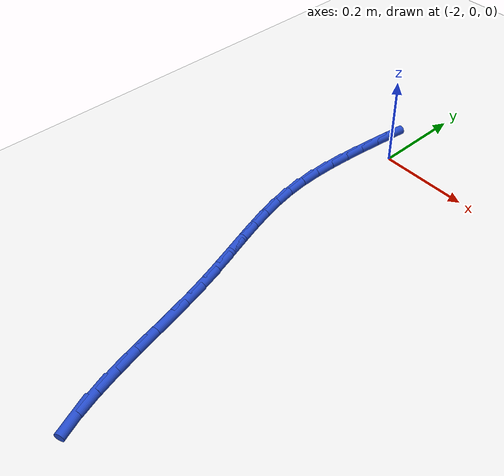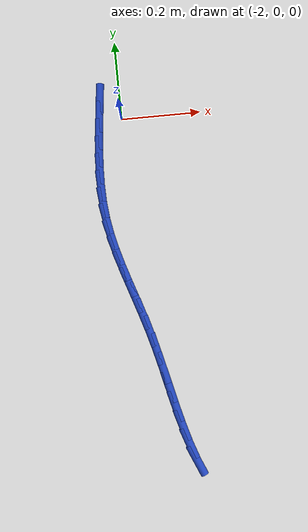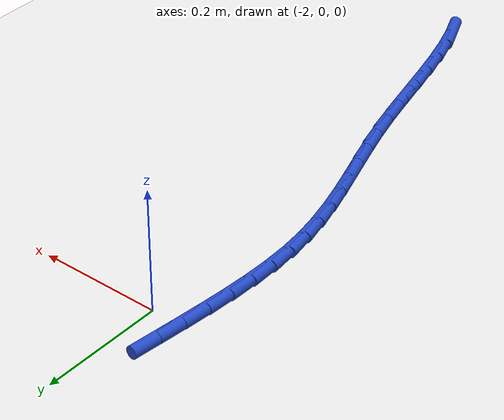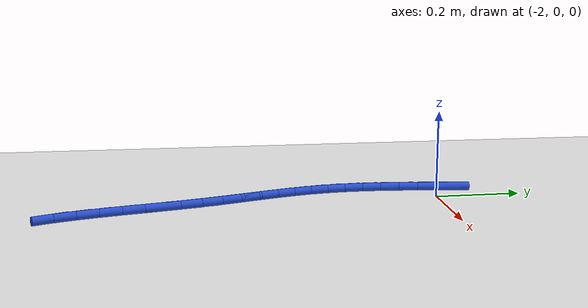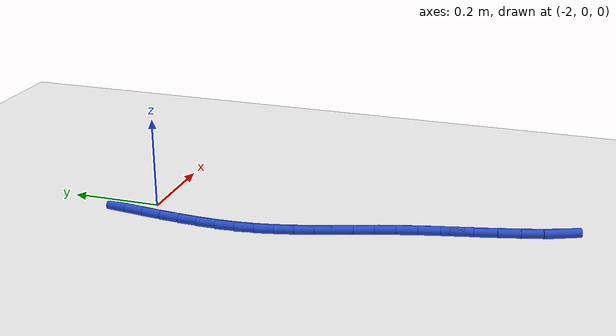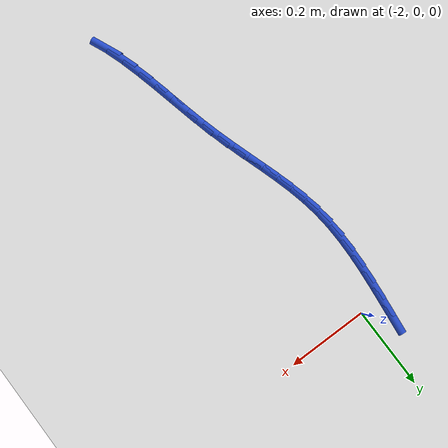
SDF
<sdf version="1.6">
 <world name="default">
  <model name="ground_plane">
   <static>1</static>
   <link name="link">
    <collision name="collision">
     <geometry><plane><normal>0 0 1</normal><size>100 100</size></plane></geometry>
     <surface><friction><ode><mu>100</mu><mu2>50</mu2></ode></friction></surface>
    </collision>
    <visual name="visual">
     <cast_shadows>0</cast_shadows>
     <geometry><plane><normal>0 0 1</normal><size>100 100</size></plane></geometry>
     <material>
      <script><uri>file://media/materials/scripts/gazebo.material</uri><name>Gazebo/WhiteGlow</name></script>
     </material>
    </visual>
   </link>
  </model>
  <model name="line">
   <link name="link_88">
    <pose>-2.0510034778801427 0.05363172904365229 0.01 0 1.57 1.4549504219575737</pose>
    <collision name="collision">
     <geometry><cylinder><radius>0.01</radius><length>0.08</length></cylinder></geometry>
    </collision>
    <visual name="visual">
     <material>
      <script><name>Gazebo/Blue</name><uri>file://media/materials/scripts/gazebo.material</uri></script>
     </material>
     <geometry><cylinder><radius>0.01</radius><length>0.08</length></cylinder></geometry>
    </visual>
   </link>
   <link name="link_89">
    <pose>-2.0561972716901766 0.00899882675182484 0.01 0 1.57 1.4623214314707187</pose>
    <collision name="collision">
     <geometry><cylinder><radius>0.01</radius><length>0.08</length></cylinder></geometry>
    </collision>
    <visual name="visual">
     <material>
      <script><name>Gazebo/Blue</name><uri>file://media/materials/scripts/gazebo.material</uri></script>
     </material>
     <geometry><cylinder><radius>0.01</radius><length>0.08</length></cylinder></geometry>
    </visual>
   </link>
   <link name="link_90">
    <pose>-2.061041387255293 -0.035482439735718824 0.01 0 1.57 1.4801453365531057</pose>
    <collision name="collision">
     <geometry><cylinder><radius>0.01</radius><length>0.08</length></cylinder></geometry>
    </collision>
    <visual name="visual">
     <material>
      <script><name>Gazebo/Blue</name><uri>file://media/materials/scripts/gazebo.material</uri></script>
     </material>
     <geometry><cylinder><radius>0.01</radius><length>0.08</length></cylinder></geometry>
    </visual>
   </link>
   <link name="link_91">
    <pose>-2.0650588211838605 -0.0796785740160246 0.01 0 1.57 1.5088859734309945</pose>
    <collision name="collision">
     <geometry><cylinder><radius>0.01</radius><length>0.08</length></cylinder></geometry>
    </collision>
    <visual name="visual">
     <material>
      <script><name>Gazebo/Blue</name><uri>file://media/materials/scripts/gazebo.material</uri></script>
     </material>
     <geometry><cylinder><radius>0.01</radius><length>0.08</length></cylinder></geometry>
    </visual>
   </link>
   <link name="link_92">
    <pose>-2.0677725700842475 -0.12345607968613757 0.01 0 1.57 1.5492137383669815</pose>
    <collision name="collision">
     <geometry><cylinder><radius>0.01</radius><length>0.08</length></cylinder></geometry>
    </collision>
    <visual name="visual">
     <material>
      <script><name>Gazebo/Blue</name><uri>file://media/materials/scripts/gazebo.material</uri></script>
     </material>
     <geometry><cylinder><radius>0.01</radius><length>0.08</length></cylinder></geometry>
    </visual>
   </link>
   <link name="link_93">
    <pose>-2.068705630564823 -0.16668146034310294 0.01 0 1.57 -1.5396677196924176</pose>
    <collision name="collision">
     <geometry><cylinder><radius>0.01</radius><length>0.08</length></cylinder></geometry>
    </collision>
    <visual name="visual">
     <material>
      <script><name>Gazebo/Blue</name><uri>file://media/materials/scripts/gazebo.material</uri></script>
     </material>
     <geometry><cylinder><radius>0.01</radius><length>0.08</length></cylinder></geometry>
    </visual>
   </link>
   <link name="link_94">
    <pose>-2.0673809992339547 -0.20922121958396653 0.01 0 1.57 -1.4738276678237308</pose>
    <collision name="collision">
     <geometry><cylinder><radius>0.01</radius><length>0.08</length></cylinder></geometry>
    </collision>
    <visual name="visual">
     <material>
      <script><name>Gazebo/Blue</name><uri>file://media/materials/scripts/gazebo.material</uri></script>
     </material>
     <geometry><cylinder><radius>0.01</radius><length>0.08</length></cylinder></geometry>
    </visual>
   </link>
   <link name="link_95">
    <pose>-2.063322630170593 -0.25094233804665733 0.01 0 1.57 -1.4015875113860752</pose>
    <collision name="collision">
     <geometry><cylinder><radius>0.01</radius><length>0.08</length></cylinder></geometry>
    </collision>
    <visual name="visual">
     <material>
      <script><name>Gazebo/Blue</name><uri>file://media/materials/scripts/gazebo.material</uri></script>
     </material>
     <geometry><cylinder><radius>0.01</radius><length>0.08</length></cylinder></geometry>
    </visual>
   </link>
   <link name="link_96">
    <pose>-2.0563337087817954 -0.2918509178863952 0.01 0 1.57 -1.3411808812741974</pose>
    <collision name="collision">
     <geometry><cylinder><radius>0.01</radius><length>0.08</length></cylinder></geometry>
    </collision>
    <visual name="visual">
     <material>
      <script><name>Gazebo/Blue</name><uri>file://media/materials/scripts/gazebo.material</uri></script>
     </material>
     <geometry><cylinder><radius>0.01</radius><length>0.08</length></cylinder></geometry>
    </visual>
   </link>
   <link name="link_97">
    <pose>-2.046882832790003 -0.33228458985716236 0.01 0 1.57 -1.2966223759244657</pose>
    <collision name="collision">
     <geometry><cylinder><radius>0.01</radius><length>0.08</length></cylinder></geometry>
    </collision>
    <visual name="visual">
     <material>
      <script><name>Gazebo/Blue</name><uri>file://media/materials/scripts/gazebo.material</uri></script>
     </material>
     <geometry><cylinder><radius>0.01</radius><length>0.08</length></cylinder></geometry>
    </visual>
   </link>
   <link name="link_98">
    <pose>-2.035535596846867 -0.37262931152517936 0.01 0 1.57 -1.268416777366459</pose>
    <collision name="collision">
     <geometry><cylinder><radius>0.01</radius><length>0.08</length></cylinder></geometry>
    </collision>
    <visual name="visual">
     <material>
      <script><name>Gazebo/Blue</name><uri>file://media/materials/scripts/gazebo.material</uri></script>
     </material>
     <geometry><cylinder><radius>0.01</radius><length>0.08</length></cylinder></geometry>
    </visual>
   </link>
   <link name="link_99">
    <pose>-2.0228575956040418 -0.4132710404566677 0.01 0 1.57 -1.2562876628318396</pose>
    <collision name="collision">
     <geometry><cylinder><radius>0.01</radius><length>0.08</length></cylinder></geometry>
    </collision>
    <visual name="visual">
     <material>
      <script><name>Gazebo/Blue</name><uri>file://media/materials/scripts/gazebo.material</uri></script>
     </material>
     <geometry><cylinder><radius>0.01</radius><length>0.08</length></cylinder></geometry>
    </visual>
   </link>
   <link name="link_100">
    <pose>-2.0094144237131815 -0.45459573421784666 0.01 0 1.57 -1.259451128083548</pose>
    <collision name="collision">
     <geometry><cylinder><radius>0.01</radius><length>0.08</length></cylinder></geometry>
    </collision>
    <visual name="visual">
     <material>
      <script><name>Gazebo/Blue</name><uri>file://media/materials/scripts/gazebo.material</uri></script>
     </material>
     <geometry><cylinder><radius>0.01</radius><length>0.08</length></cylinder></geometry>
    </visual>
   </link>
   <link name="link_101">
    <pose>-1.9957716758259394 -0.4969893503749375 0.01 0 1.57 -1.276785146767057</pose>
    <collision name="collision">
     <geometry><cylinder><radius>0.01</radius><length>0.08</length></cylinder></geometry>
    </collision>
    <visual name="visual">
     <material>
      <script><name>Gazebo/Blue</name><uri>file://media/materials/scripts/gazebo.material</uri></script>
     </material>
     <geometry><cylinder><radius>0.01</radius><length>0.08</length></cylinder></geometry>
    </visual>
   </link>
   <link name="link_102">
    <pose>-1.9824949465939692 -0.5408378464941612 0.01 0 1.57 -1.3063782293023634</pose>
    <collision name="collision">
     <geometry><cylinder><radius>0.01</radius><length>0.08</length></cylinder></geometry>
    </collision>
    <visual name="visual">
     <material>
      <script><name>Gazebo/Blue</name><uri>file://media/materials/scripts/gazebo.material</uri></script>
     </material>
     <geometry><cylinder><radius>0.01</radius><length>0.08</length></cylinder></geometry>
    </visual>
   </link>
   <link name="link_103">
    <pose>-1.9701299819947984 -0.5865058209523091 0.01 0 1.57 -1.3338168795494558</pose>
    <collision name="collision">
     <geometry><cylinder><radius>0.01</radius><length>0.08</length></cylinder></geometry>
    </collision>
    <visual name="visual">
     <material>
      <script><name>Gazebo/Blue</name><uri>file://media/materials/scripts/gazebo.material</uri></script>
     </material>
     <geometry><cylinder><radius>0.01</radius><length>0.08</length></cylinder></geometry>
    </visual>
   </link>
   <link name="link_104">
    <pose>-1.9587068834350068 -0.633802986192792 0.01 0 1.57 -1.3461297990340557</pose>
    <collision name="collision">
     <geometry><cylinder><radius>0.01</radius><length>0.08</length></cylinder></geometry>
    </collision>
    <visual name="visual">
     <material>
      <script><name>Gazebo/Blue</name><uri>file://media/materials/scripts/gazebo.material</uri></script>
     </material>
     <geometry><cylinder><radius>0.01</radius><length>0.08</length></cylinder></geometry>
    </visual>
   </link>
   <link name="link_105">
    <pose>-1.9477049505912603 -0.6819463360516006 0.01 0 1.57 -1.3437915254402053</pose>
    <collision name="collision">
     <geometry><cylinder><radius>0.01</radius><length>0.08</length></cylinder></geometry>
    </collision>
    <visual name="visual">
     <material>
      <script><name>Gazebo/Blue</name><uri>file://media/materials/scripts/gazebo.material</uri></script>
     </material>
     <geometry><cylinder><radius>0.01</radius><length>0.08</length></cylinder></geometry>
    </visual>
   </link>
   <link name="link_106">
    <pose>-1.9365765934437877 -0.7301239283201263 0.01 0 1.57 -1.3267630692970043</pose>
    <collision name="collision">
     <geometry><cylinder><radius>0.01</radius><length>0.08</length></cylinder></geometry>
    </collision>
    <visual name="visual">
     <material>
      <script><name>Gazebo/Blue</name><uri>file://media/materials/scripts/gazebo.material</uri></script>
     </material>
     <geometry><cylinder><radius>0.01</radius><length>0.08</length></cylinder></geometry>
    </visual>
   </link>
   <link name="link_107">
    <pose>-1.9247742219728208 -0.7775238207897598 0.01 0 1.57 -1.2938022467952561</pose>
    <collision name="collision">
     <geometry><cylinder><radius>0.01</radius><length>0.08</length></cylinder></geometry>
    </collision>
    <visual name="visual">
     <material>
      <script><name>Gazebo/Blue</name><uri>file://media/materials/scripts/gazebo.material</uri></script>
     </material>
     <geometry><cylinder><radius>0.01</radius><length>0.08</length></cylinder></geometry>
    </visual>
   </link>
   <link name="link_108">
    <pose>-1.9117502461585902 -0.8233340712518918 0.01 0 1.57 -1.2423512795957257</pose>
    <collision name="collision">
     <geometry><cylinder><radius>0.01</radius><length>0.08</length></cylinder></geometry>
    </collision>
    <visual name="visual">
     <material>
      <script><name>Gazebo/Blue</name><uri>file://media/materials/scripts/gazebo.material</uri></script>
     </material>
     <geometry><cylinder><radius>0.01</radius><length>0.08</length></cylinder></geometry>
    </visual>
   </link>
   <link name="link_109">
    <pose>-1.8969570759813263 -0.866742737497913 0.01 0 1.57 -1.168356437422006</pose>
    <collision name="collision">
     <geometry><cylinder><radius>0.01</radius><length>0.08</length></cylinder></geometry>
    </collision>
    <visual name="visual">
     <material>
      <script><name>Gazebo/Blue</name><uri>file://media/materials/scripts/gazebo.material</uri></script>
     </material>
     <geometry><cylinder><radius>0.01</radius><length>0.08</length></cylinder></geometry>
    </visual>
   </link>
  </model>
 </world>
</sdf>
